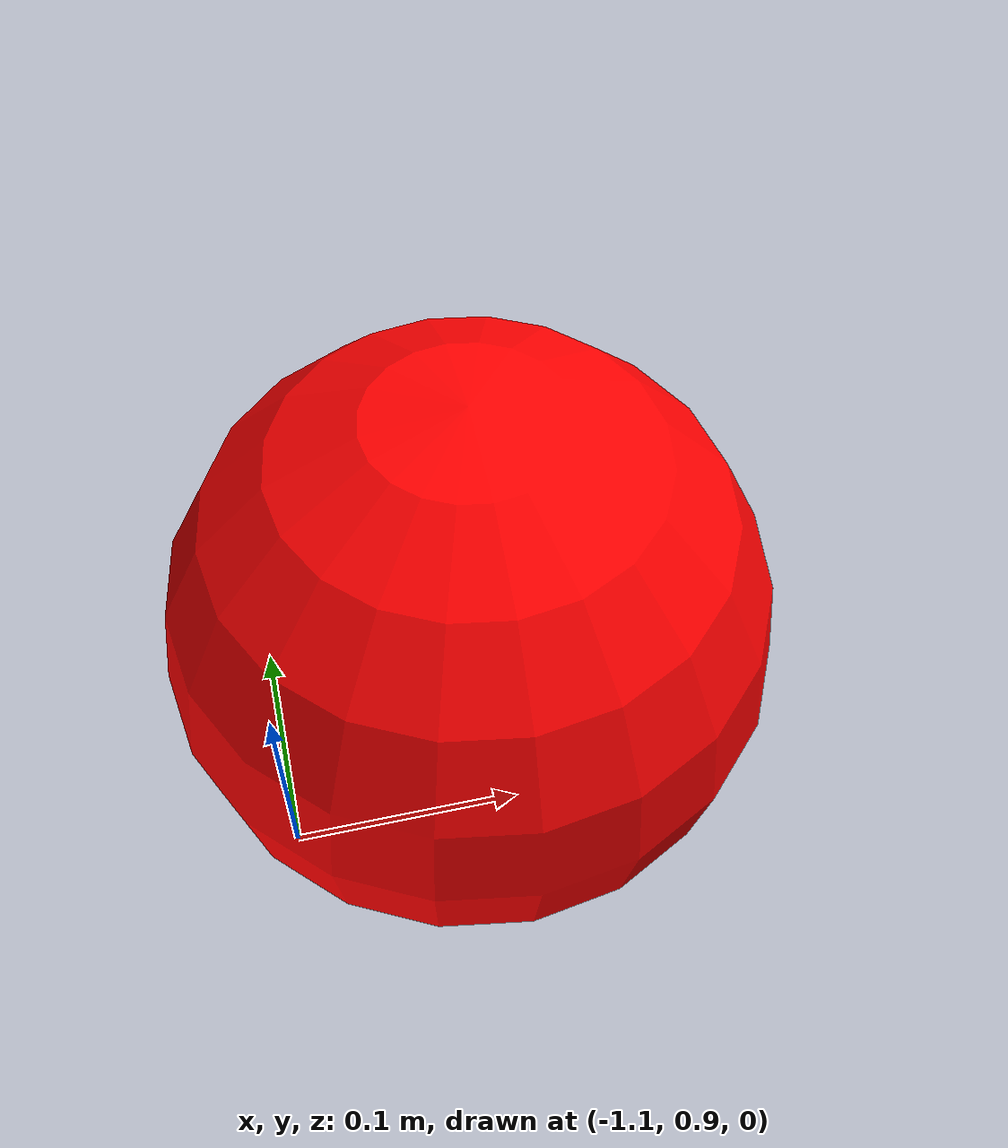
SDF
<sdf version="1.6">
  <model name="start_marker">
    <static>true</static>
    <pose>-1 1 0 0 0 0</pose>
    <link name="link">
      <visual name="visual">
        <geometry>
          <sphere>
            <radius>0.15</radius>
          </sphere>
        </geometry>
        <material>
          <ambient>1 0 0 1</ambient> <!-- Red -->
        </material>
      </visual>
    </link>
  </model>
</sdf>
